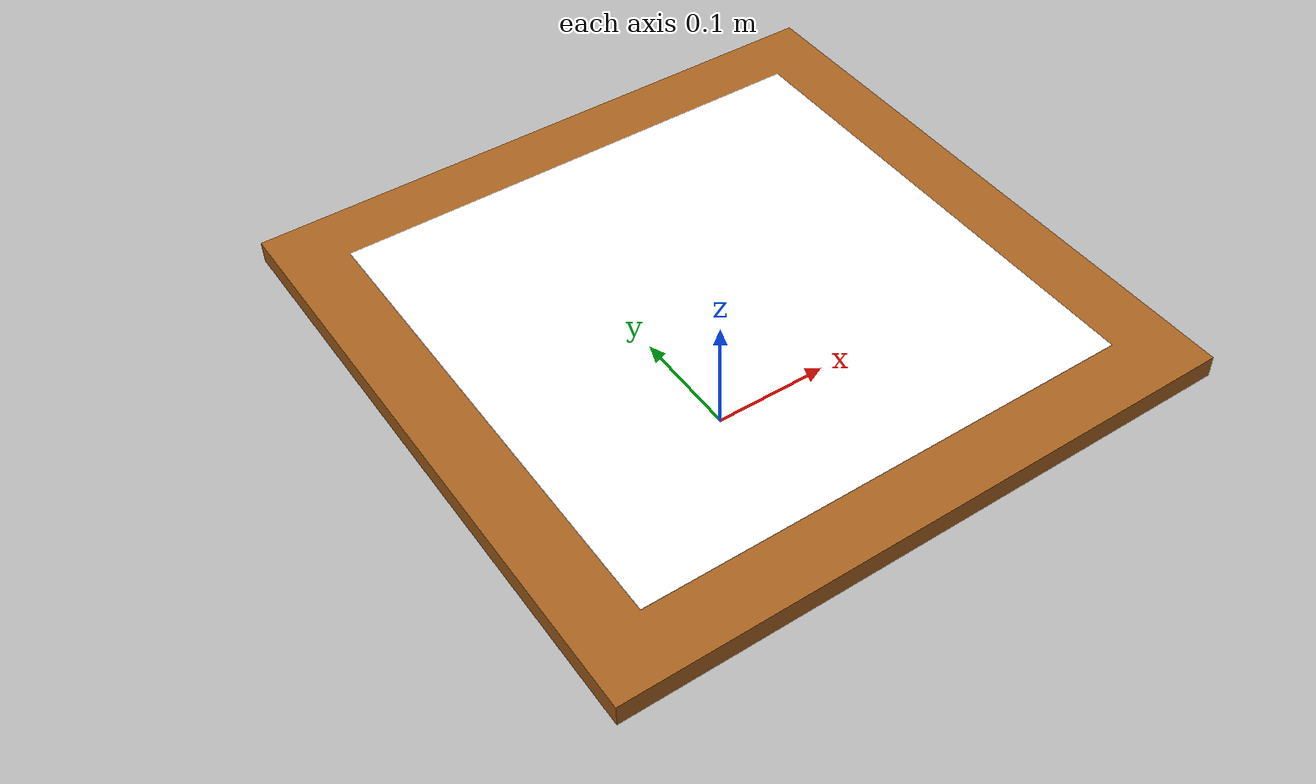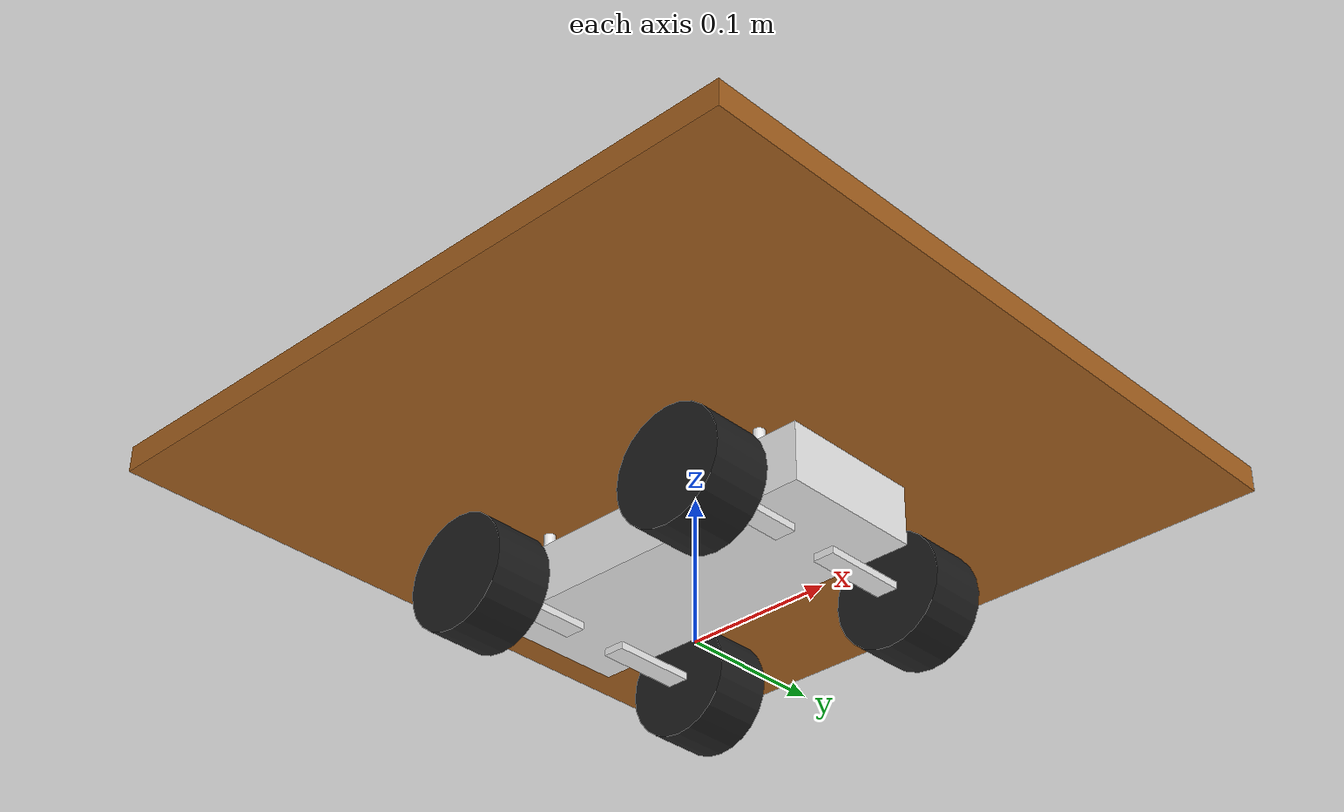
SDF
<sdf version='1.11'>
  <model name='r1_rover_clean'>
    <link name='base_footprint'>
      <inertial>
        <pose>0 0 0.058999999999999997 0 0 0</pose>
        <mass>0.45000000000000001</mass>
        <inertia>
          <ixx>0.00043499999999999979</ixx>
          <ixy>0</ixy>
          <ixz>0</ixz>
          <iyy>0.0024037500000000001</iyy>
          <iyz>0</iyz>
          <izz>0.0027187499999999998</izz>
        </inertia>
      </inertial>
      <!-- 섀시 (흰색) -->
      <visual name='base_footprint_fixed_joint_lump__chassis_link_visual'>
        <pose>0 0 0.058999999999999997 0 0 0</pose>
        <geometry>
          <box>
            <size>0.25 0.10000000000000001 0.040000000000000001</size>
          </box>
        </geometry>
        <material>
          <diffuse>0.92 0.92 0.92 1</diffuse>
          <ambient>0.92 0.92 0.92 1</ambient>
        </material>
      </visual>
      <!-- 상판 (목재 갈색) -->
      <visual name='base_footprint_fixed_joint_lump__upper_board_link_visual_1'>
        <pose>0 0 0.123 0 0 0</pose>
        <geometry>
          <box>
            <size>0.50 0.50 0.018</size>
          </box>
        </geometry>
        <material>
          <diffuse>0.65 0.38 0.12 1</diffuse>
          <ambient>0.65 0.38 0.12 1</ambient>
        </material>
      </visual>
      <!-- 바디 포스트 4개 (흰색) -->
      <visual name='base_footprint_fixed_joint_lump__fl_body_post_visual_2'>
        <pose>0.080000000000000002 0.029999999999999999 0.083999999999999991 0 0 0</pose>
        <geometry>
          <cylinder>
            <length>0.035000000000000003</length>
            <radius>0.0040000000000000001</radius>
          </cylinder>
        </geometry>
        <material>
          <diffuse>0.92 0.92 0.92 1</diffuse>
          <ambient>0.92 0.92 0.92 1</ambient>
        </material>
      </visual>
      <visual name='base_footprint_fixed_joint_lump__fr_body_post_visual_3'>
        <pose>0.080000000000000002 -0.029999999999999999 0.083999999999999991 0 0 0</pose>
        <geometry>
          <cylinder>
            <length>0.035000000000000003</length>
            <radius>0.0040000000000000001</radius>
          </cylinder>
        </geometry>
        <material>
          <diffuse>0.92 0.92 0.92 1</diffuse>
          <ambient>0.92 0.92 0.92 1</ambient>
        </material>
      </visual>
      <visual name='base_footprint_fixed_joint_lump__rl_body_post_visual_4'>
        <pose>-0.10000000000000001 0.029999999999999999 0.083999999999999991 0 0 0</pose>
        <geometry>
          <cylinder>
            <length>0.035000000000000003</length>
            <radius>0.0040000000000000001</radius>
          </cylinder>
        </geometry>
        <material>
          <diffuse>0.92 0.92 0.92 1</diffuse>
          <ambient>0.92 0.92 0.92 1</ambient>
        </material>
      </visual>
      <visual name='base_footprint_fixed_joint_lump__rr_body_post_visual_5'>
        <pose>-0.10000000000000001 -0.029999999999999999 0.083999999999999991 0 0 0</pose>
        <geometry>
          <cylinder>
            <length>0.035000000000000003</length>
            <radius>0.0040000000000000001</radius>
          </cylinder>
        </geometry>
        <material>
          <diffuse>0.92 0.92 0.92 1</diffuse>
          <ambient>0.92 0.92 0.92 1</ambient>
        </material>
      </visual>

      <!-- ArUco 마커 패널 (rove_box 500x500mm 윗면, 400x400mm) -->
      <visual name='aruco_marker_visual'>
        <pose>0 0 0.132 0 0 0</pose>
        <geometry>
          <box>
            <size>0.40 0.40 0.001</size>
          </box>
        </geometry>
        <material>
          <ambient>1 1 1 1</ambient>
          <diffuse>1 1 1 1</diffuse>
          <specular>0 0 0 1</specular>
          <emissive>1 1 1 1</emissive>
          <pbr>
            <metal>
              <albedo_map>model://r1_rover_clean/materials/textures/aruco_marker.png</albedo_map>
              <emissive_map>model://r1_rover_clean/materials/textures/aruco_marker.png</emissive_map>
            </metal>
          </pbr>
        </material>
      </visual>
      <!-- Landing pad collision: upper board top surface (drone can land on this) -->
      <collision name="upper_board_collision">
        <pose>0 0 0.123 0 0 0</pose>
        <geometry>
          <box><size>0.500 0.500 0.018</size></box>
        </geometry>
        <surface>
          <contact>
            <ode>
              <min_depth>0.001</min_depth>
            </ode>
          </contact>
          <friction>
            <ode><mu>0.8</mu><mu2>0.8</mu2></ode>
          </friction>
        </surface>
      </collision>
    </link>

    <!-- gz_bridge는 "base_link" 링크에서 센서를 구독함 (GZBridge.cpp 하드코딩) -->
    <link name="base_link">
      <pose relative_to="base_footprint">0 0 0 0 0 0</pose>
      <inertial>
        <mass>0.001</mass>
        <inertia><ixx>1e-6</ixx><ixy>0</ixy><ixz>0</ixz><iyy>1e-6</iyy><iyz>0</iyz><izz>1e-6</izz></inertia>
      </inertial>
      <sensor name="imu_sensor" type="imu">
        <always_on>1</always_on>
        <update_rate>250</update_rate>
        <imu>
          <angular_velocity>
            <x><noise type="gaussian"><mean>0</mean><stddev>0.0003394</stddev><dynamic_bias_stddev>3.8785e-05</dynamic_bias_stddev><dynamic_bias_correlation_time>1000</dynamic_bias_correlation_time></noise></x>
            <y><noise type="gaussian"><mean>0</mean><stddev>0.0003394</stddev><dynamic_bias_stddev>3.8785e-05</dynamic_bias_stddev><dynamic_bias_correlation_time>1000</dynamic_bias_correlation_time></noise></y>
            <z><noise type="gaussian"><mean>0</mean><stddev>0.0003394</stddev><dynamic_bias_stddev>3.8785e-05</dynamic_bias_stddev><dynamic_bias_correlation_time>1000</dynamic_bias_correlation_time></noise></z>
          </angular_velocity>
          <linear_acceleration>
            <x><noise type="gaussian"><mean>0</mean><stddev>0.004</stddev><dynamic_bias_stddev>0.006</dynamic_bias_stddev><dynamic_bias_correlation_time>300</dynamic_bias_correlation_time></noise></x>
            <y><noise type="gaussian"><mean>0</mean><stddev>0.004</stddev><dynamic_bias_stddev>0.006</dynamic_bias_stddev><dynamic_bias_correlation_time>300</dynamic_bias_correlation_time></noise></y>
            <z><noise type="gaussian"><mean>0</mean><stddev>0.004</stddev><dynamic_bias_stddev>0.006</dynamic_bias_stddev><dynamic_bias_correlation_time>300</dynamic_bias_correlation_time></noise></z>
          </linear_acceleration>
        </imu>
      </sensor>
      <sensor name="air_pressure_sensor" type="air_pressure">
        <always_on>1</always_on>
        <update_rate>50</update_rate>
        <air_pressure>
          <pressure><noise type="gaussian"><mean>0</mean><stddev>0.01</stddev></noise></pressure>
        </air_pressure>
      </sensor>
      <sensor name="magnetometer_sensor" type="magnetometer">
        <always_on>1</always_on>
        <update_rate>100</update_rate>
        <magnetometer>
          <x><noise type="gaussian"><stddev>0.0001</stddev></noise></x>
          <y><noise type="gaussian"><stddev>0.0001</stddev></noise></y>
          <z><noise type="gaussian"><stddev>0.0001</stddev></noise></z>
        </magnetometer>
      </sensor>
      <sensor name="navsat_sensor" type="navsat">
        <always_on>1</always_on>
        <update_rate>30</update_rate>
      </sensor>
    </link>
    <joint name="base_footprint_to_base_link" type="fixed">
      <parent>base_footprint</parent>
      <child>base_link</child>
    </joint>

    <joint name='fl_shock_joint' type='prismatic'>
      <pose relative_to='base_footprint'>0.087499999999999994 0.086999999999999994 0.048999999999999988 0 0 0</pose>
      <parent>base_footprint</parent>
      <child>fl_suspension_arm</child>
      <axis>
        <xyz>0 0 1</xyz>
        <limit>
          <lower>-0.035000000000000003</lower>
          <upper>0.01</upper>
          <effort>200</effort>
          <velocity>2</velocity>
        </limit>
        <dynamics>
          <damping>45</damping>
          <friction>0.5</friction>
          <spring_reference>0</spring_reference>
          <spring_stiffness>0</spring_stiffness>
        </dynamics>
      </axis>
      <physics>
        <ode>
          <implicit_spring_damper>true</implicit_spring_damper>
          <cfm_damping>true</cfm_damping>
          <limit>
            <cfm>0</cfm>
            <erp>0.20000000000000001</erp>
          </limit>
        </ode>
      </physics>
    </joint>
    <link name='fl_suspension_arm'>
      <pose relative_to='fl_shock_joint'>0 0 0 0 0 0</pose>
      <inertial>
        <pose>0 0 0 0 0 0</pose>
        <mass>0.040000000000000001</mass>
        <inertia>
          <ixx>3.2499999999999998e-06</ixx>
          <ixy>0</ixy>
          <ixz>0</ixz>
          <iyy>3.2499999999999998e-06</iyy>
          <iyz>0</iyz>
          <izz>5.0000000000000008e-07</izz>
        </inertia>
      </inertial>
      <visual name='fl_suspension_arm_visual'>
        <pose>0 0 0 0 0 0</pose>
        <geometry>
          <cylinder>
            <length>0.040000000000000001</length>
            <radius>0.0060000000000000001</radius>
          </cylinder>
        </geometry>
        <material>
          <diffuse>0.875 0.875 0.875 1</diffuse>
          <ambient>0.875 0.875 0.875 1</ambient>
        </material>
      </visual>
      <visual name='fl_suspension_arm_visual_1'>
        <pose>0 -0.035000000000000003 -0.014999999999999999 0 0 0</pose>
        <geometry>
          <box>
            <size>0.014999999999999999 0.070000000000000007 0.0050000000000000001</size>
          </box>
        </geometry>
        <material>
          <diffuse>0.92 0.92 0.92 1</diffuse>
          <ambient>0.92 0.92 0.92 1</ambient>
        </material>
      </visual>
    </link>
    <joint name='fl_steering_joint' type='revolute'>
      <pose relative_to='fl_suspension_arm'>0 0 -0.014999999999999999 0 0 0</pose>
      <parent>fl_suspension_arm</parent>
      <child>fl_steering_knuckle</child>
      <axis>
        <xyz>0 0 1</xyz>
        <limit>
          <lower>-0.59999999999999998</lower>
          <upper>0.59999999999999998</upper>
          <effort>50</effort>
          <velocity>5</velocity>
        </limit>
        <dynamics>
          <spring_reference>0</spring_reference>
          <spring_stiffness>0</spring_stiffness>
        </dynamics>
      </axis>
    </joint>
    <link name='fl_steering_knuckle'>
      <pose relative_to='fl_steering_joint'>0 0 0 0 0 0</pose>
      <inertial>
        <pose>0 0 0 0 0 0</pose>
        <mass>0.02</mass>
        <inertia>
          <ixx>1.333333333333333e-06</ixx>
          <ixy>0</ixy>
          <ixz>0</ixz>
          <iyy>1.333333333333333e-06</iyy>
          <iyz>0</iyz>
          <izz>1.333333333333333e-06</izz>
        </inertia>
      </inertial>
      <visual name='fl_steering_knuckle_visual'>
        <pose>0 0 0 0 0 0</pose>
        <geometry>
          <box>
            <size>0.02 0.02 0.02</size>
          </box>
        </geometry>
        <material>
          <diffuse>0.25 0.25 0.25 1</diffuse>
          <ambient>0.25 0.25 0.25 1</ambient>
        </material>
      </visual>
    </link>
    <joint name='fl_wheel_joint' type='revolute'>
      <pose relative_to='fl_steering_knuckle'>0 0.01 0 0 0 0</pose>
      <parent>fl_steering_knuckle</parent>
      <child>fl_wheel</child>
      <axis>
        <xyz>0 1 0</xyz>
        <limit>
          <lower>-inf</lower>
          <upper>inf</upper>
        </limit>
        <dynamics>
          <damping>0.10000000000000001</damping>
          <friction>0.20000000000000001</friction>
          <spring_reference>0</spring_reference>
          <spring_stiffness>0</spring_stiffness>
        </dynamics>
      </axis>
    </joint>
    <link name='fl_wheel'>
      <pose relative_to='fl_wheel_joint'>0 0 0 0 0 0</pose>
      <inertial>
        <pose>0 0 0 0 0 0</pose>
        <mass>0.059999999999999998</mass>
        <inertia>
          <ixx>3.1220000000000003e-05</ixx>
          <ixy>0</ixy>
          <ixz>0</ixz>
          <iyy>3.1220000000000003e-05</iyy>
          <iyz>0</iyz>
          <izz>4.5630000000000002e-05</izz>
        </inertia>
      </inertial>
      <collision name='fl_wheel_collision'>
        <pose>0 0 0 1.570796326795 0 0</pose>
        <geometry>
          <cylinder>
            <length>0.041000000000000002</length>
            <radius>0.039</radius>
          </cylinder>
        </geometry>
        <surface>
          <contact>
            <ode>
              <kp>500000</kp>
              <kd>10</kd>
              <min_depth>0.001</min_depth>
            </ode>
          </contact>
          <friction>
            <ode>
              <mu>1.2</mu>
              <mu2>1.2</mu2>
            </ode>
          </friction>
        </surface>
      </collision>
      <visual name='fl_wheel_visual'>
        <pose>0 0 0 1.570796326795 0 0</pose>
        <geometry>
          <cylinder>
            <length>0.041000000000000002</length>
            <radius>0.039</radius>
          </cylinder>
        </geometry>
        <material>
          <script>
            <name>Gazebo/Black</name>
            <uri>file://media/materials/scripts/gazebo.material</uri>
          </script>
          <diffuse>0.92 0.92 0.92 1</diffuse>
          <ambient>0.92 0.92 0.92 1</ambient>
        </material>
      </visual>
    </link>
    <joint name='fr_shock_joint' type='prismatic'>
      <pose relative_to='base_footprint'>0.087499999999999994 -0.086999999999999994 0.048999999999999988 0 0 0</pose>
      <parent>base_footprint</parent>
      <child>fr_suspension_arm</child>
      <axis>
        <xyz>0 0 1</xyz>
        <limit>
          <lower>-0.035000000000000003</lower>
          <upper>0.01</upper>
          <effort>200</effort>
          <velocity>2</velocity>
        </limit>
        <dynamics>
          <damping>45</damping>
          <friction>0.5</friction>
          <spring_reference>0</spring_reference>
          <spring_stiffness>0</spring_stiffness>
        </dynamics>
      </axis>
      <physics>
        <ode>
          <implicit_spring_damper>true</implicit_spring_damper>
          <cfm_damping>true</cfm_damping>
          <limit>
            <cfm>0</cfm>
            <erp>0.20000000000000001</erp>
          </limit>
        </ode>
      </physics>
    </joint>
    <link name='fr_suspension_arm'>
      <pose relative_to='fr_shock_joint'>0 0 0 0 0 0</pose>
      <inertial>
        <pose>0 0 0 0 0 0</pose>
        <mass>0.040000000000000001</mass>
        <inertia>
          <ixx>3.2499999999999998e-06</ixx>
          <ixy>0</ixy>
          <ixz>0</ixz>
          <iyy>3.2499999999999998e-06</iyy>
          <iyz>0</iyz>
          <izz>5.0000000000000008e-07</izz>
        </inertia>
      </inertial>
      <visual name='fr_suspension_arm_visual'>
        <pose>0 0 0 0 0 0</pose>
        <geometry>
          <cylinder>
            <length>0.040000000000000001</length>
            <radius>0.0060000000000000001</radius>
          </cylinder>
        </geometry>
        <material>
          <diffuse>0.875 0.875 0.875 1</diffuse>
          <ambient>0.875 0.875 0.875 1</ambient>
        </material>
      </visual>
      <visual name='fr_suspension_arm_visual_1'>
        <pose>0 0.035000000000000003 -0.014999999999999999 0 0 0</pose>
        <geometry>
          <box>
            <size>0.014999999999999999 0.070000000000000007 0.0050000000000000001</size>
          </box>
        </geometry>
        <material>
          <diffuse>0.92 0.92 0.92 1</diffuse>
          <ambient>0.92 0.92 0.92 1</ambient>
        </material>
      </visual>
    </link>
    <joint name='fr_steering_joint' type='revolute'>
      <pose relative_to='fr_suspension_arm'>0 0 -0.014999999999999999 0 0 0</pose>
      <parent>fr_suspension_arm</parent>
      <child>fr_steering_knuckle</child>
      <axis>
        <xyz>0 0 1</xyz>
        <limit>
          <lower>-0.59999999999999998</lower>
          <upper>0.59999999999999998</upper>
          <effort>50</effort>
          <velocity>5</velocity>
        </limit>
        <dynamics>
          <spring_reference>0</spring_reference>
          <spring_stiffness>0</spring_stiffness>
        </dynamics>
      </axis>
    </joint>
    <link name='fr_steering_knuckle'>
      <pose relative_to='fr_steering_joint'>0 0 0 0 0 0</pose>
      <inertial>
        <pose>0 0 0 0 0 0</pose>
        <mass>0.02</mass>
        <inertia>
          <ixx>1.333333333333333e-06</ixx>
          <ixy>0</ixy>
          <ixz>0</ixz>
          <iyy>1.333333333333333e-06</iyy>
          <iyz>0</iyz>
          <izz>1.333333333333333e-06</izz>
        </inertia>
      </inertial>
      <visual name='fr_steering_knuckle_visual'>
        <pose>0 0 0 0 0 0</pose>
        <geometry>
          <box>
            <size>0.02 0.02 0.02</size>
          </box>
        </geometry>
        <material>
          <diffuse>0.25 0.25 0.25 1</diffuse>
          <ambient>0.25 0.25 0.25 1</ambient>
        </material>
      </visual>
    </link>
    <joint name='fr_wheel_joint' type='revolute'>
      <pose relative_to='fr_steering_knuckle'>0 -0.01 0 0 0 0</pose>
      <parent>fr_steering_knuckle</parent>
      <child>fr_wheel</child>
      <axis>
        <xyz>0 1 0</xyz>
        <limit>
          <lower>-inf</lower>
          <upper>inf</upper>
        </limit>
        <dynamics>
          <damping>0.10000000000000001</damping>
          <friction>0.20000000000000001</friction>
          <spring_reference>0</spring_reference>
          <spring_stiffness>0</spring_stiffness>
        </dynamics>
      </axis>
    </joint>
    <link name='fr_wheel'>
      <pose relative_to='fr_wheel_joint'>0 0 0 0 0 0</pose>
      <inertial>
        <pose>0 0 0 0 0 0</pose>
        <mass>0.059999999999999998</mass>
        <inertia>
          <ixx>3.1220000000000003e-05</ixx>
          <ixy>0</ixy>
          <ixz>0</ixz>
          <iyy>3.1220000000000003e-05</iyy>
          <iyz>0</iyz>
          <izz>4.5630000000000002e-05</izz>
        </inertia>
      </inertial>
      <collision name='fr_wheel_collision'>
        <pose>0 0 0 1.570796326795 0 0</pose>
        <geometry>
          <cylinder>
            <length>0.041000000000000002</length>
            <radius>0.039</radius>
          </cylinder>
        </geometry>
        <surface>
          <contact>
            <ode>
              <kp>500000</kp>
              <kd>10</kd>
              <min_depth>0.001</min_depth>
            </ode>
          </contact>
          <friction>
            <ode>
              <mu>1.2</mu>
              <mu2>1.2</mu2>
            </ode>
          </friction>
        </surface>
      </collision>
      <visual name='fr_wheel_visual'>
        <pose>0 0 0 1.570796326795 0 0</pose>
        <geometry>
          <cylinder>
            <length>0.041000000000000002</length>
            <radius>0.039</radius>
          </cylinder>
        </geometry>
        <material>
          <script>
            <name>Gazebo/Black</name>
            <uri>file://media/materials/scripts/gazebo.material</uri>
          </script>
          <diffuse>0.92 0.92 0.92 1</diffuse>
          <ambient>0.92 0.92 0.92 1</ambient>
        </material>
      </visual>
    </link>
    <joint name='rl_shock_joint' type='prismatic'>
      <pose relative_to='base_footprint'>-0.087499999999999994 0.086999999999999994 0.048999999999999988 0 0 0</pose>
      <parent>base_footprint</parent>
      <child>rl_suspension_arm</child>
      <axis>
        <xyz>0 0 1</xyz>
        <limit>
          <lower>-0.035000000000000003</lower>
          <upper>0.01</upper>
          <effort>200</effort>
          <velocity>2</velocity>
        </limit>
        <dynamics>
          <damping>45</damping>
          <friction>0.5</friction>
          <spring_reference>0</spring_reference>
          <spring_stiffness>0</spring_stiffness>
        </dynamics>
      </axis>
      <physics>
        <ode>
          <implicit_spring_damper>true</implicit_spring_damper>
          <cfm_damping>true</cfm_damping>
          <limit>
            <cfm>0</cfm>
            <erp>0.20000000000000001</erp>
          </limit>
        </ode>
      </physics>
    </joint>
    <link name='rl_suspension_arm'>
      <pose relative_to='rl_shock_joint'>0 0 0 0 0 0</pose>
      <inertial>
        <pose>0 0 -0.0050000000000000001 0 0 0</pose>
        <mass>0.059999999999999998</mass>
        <inertia>
          <ixx>7.5833333333333333e-06</ixx>
          <ixy>0</ixy>
          <ixz>0</ixz>
          <iyy>7.5833333333333333e-06</iyy>
          <iyz>0</iyz>
          <izz>1.8333333333333331e-06</izz>
        </inertia>
      </inertial>
      <visual name='rl_suspension_arm_visual'>
        <pose>0 0 0 0 0 0</pose>
        <geometry>
          <cylinder>
            <length>0.040000000000000001</length>
            <radius>0.0060000000000000001</radius>
          </cylinder>
        </geometry>
        <material>
          <diffuse>0.875 0.875 0.875 1</diffuse>
          <ambient>0.875 0.875 0.875 1</ambient>
        </material>
      </visual>
      <visual name='rl_suspension_arm_visual_1'>
        <pose>0 -0.035000000000000003 -0.014999999999999999 0 0 0</pose>
        <geometry>
          <box>
            <size>0.014999999999999999 0.070000000000000007 0.0050000000000000001</size>
          </box>
        </geometry>
        <material>
          <diffuse>0.92 0.92 0.92 1</diffuse>
          <ambient>0.92 0.92 0.92 1</ambient>
        </material>
      </visual>
      <visual name='rl_suspension_arm_fixed_joint_lump__rl_steering_knuckle_visual_2'>
        <pose>0 0 -0.014999999999999999 0 0 0</pose>
        <geometry>
          <box>
            <size>0.02 0.02 0.02</size>
          </box>
        </geometry>
        <material>
          <diffuse>0.25 0.25 0.25 1</diffuse>
          <ambient>0.25 0.25 0.25 1</ambient>
        </material>
      </visual>
    </link>
    <joint name='rl_wheel_joint' type='revolute'>
      <pose relative_to='rl_suspension_arm'>0 0.01 -0.014999999999999999 0 0 0</pose>
      <parent>rl_suspension_arm</parent>
      <child>rl_wheel</child>
      <axis>
        <xyz>0 1 0</xyz>
        <limit>
          <lower>-inf</lower>
          <upper>inf</upper>
        </limit>
        <dynamics>
          <damping>0.10000000000000001</damping>
          <friction>0.20000000000000001</friction>
          <spring_reference>0</spring_reference>
          <spring_stiffness>0</spring_stiffness>
        </dynamics>
      </axis>
    </joint>
    <link name='rl_wheel'>
      <pose relative_to='rl_wheel_joint'>0 0 0 0 0 0</pose>
      <inertial>
        <pose>0 0 0 0 0 0</pose>
        <mass>0.059999999999999998</mass>
        <inertia>
          <ixx>3.1220000000000003e-05</ixx>
          <ixy>0</ixy>
          <ixz>0</ixz>
          <iyy>3.1220000000000003e-05</iyy>
          <iyz>0</iyz>
          <izz>4.5630000000000002e-05</izz>
        </inertia>
      </inertial>
      <collision name='rl_wheel_collision'>
        <pose>0 0 0 1.570796326795 0 0</pose>
        <geometry>
          <cylinder>
            <length>0.041000000000000002</length>
            <radius>0.039</radius>
          </cylinder>
        </geometry>
        <surface>
          <contact>
            <ode>
              <kp>500000</kp>
              <kd>10</kd>
              <min_depth>0.001</min_depth>
            </ode>
          </contact>
          <friction>
            <ode>
              <mu>1.2</mu>
              <mu2>1.2</mu2>
            </ode>
          </friction>
        </surface>
      </collision>
      <visual name='rl_wheel_visual'>
        <pose>0 0 0 1.570796326795 0 0</pose>
        <geometry>
          <cylinder>
            <length>0.041000000000000002</length>
            <radius>0.039</radius>
          </cylinder>
        </geometry>
        <material>
          <script>
            <name>Gazebo/Black</name>
            <uri>file://media/materials/scripts/gazebo.material</uri>
          </script>
          <diffuse>0.92 0.92 0.92 1</diffuse>
          <ambient>0.92 0.92 0.92 1</ambient>
        </material>
      </visual>
    </link>
    <joint name='rr_shock_joint' type='prismatic'>
      <pose relative_to='base_footprint'>-0.087499999999999994 -0.086999999999999994 0.048999999999999988 0 0 0</pose>
      <parent>base_footprint</parent>
      <child>rr_suspension_arm</child>
      <axis>
        <xyz>0 0 1</xyz>
        <limit>
          <lower>-0.035000000000000003</lower>
          <upper>0.01</upper>
          <effort>200</effort>
          <velocity>2</velocity>
        </limit>
        <dynamics>
          <damping>45</damping>
          <friction>0.5</friction>
          <spring_reference>0</spring_reference>
          <spring_stiffness>0</spring_stiffness>
        </dynamics>
      </axis>
      <physics>
        <ode>
          <implicit_spring_damper>true</implicit_spring_damper>
          <cfm_damping>true</cfm_damping>
          <limit>
            <cfm>0</cfm>
            <erp>0.20000000000000001</erp>
          </limit>
        </ode>
      </physics>
    </joint>
    <link name='rr_suspension_arm'>
      <pose relative_to='rr_shock_joint'>0 0 0 0 0 0</pose>
      <inertial>
        <pose>0 0 -0.0050000000000000001 0 0 0</pose>
        <mass>0.059999999999999998</mass>
        <inertia>
          <ixx>7.5833333333333333e-06</ixx>
          <ixy>0</ixy>
          <ixz>0</ixz>
          <iyy>7.5833333333333333e-06</iyy>
          <iyz>0</iyz>
          <izz>1.8333333333333331e-06</izz>
        </inertia>
      </inertial>
      <visual name='rr_suspension_arm_visual'>
        <pose>0 0 0 0 0 0</pose>
        <geometry>
          <cylinder>
            <length>0.040000000000000001</length>
            <radius>0.0060000000000000001</radius>
          </cylinder>
        </geometry>
        <material>
          <diffuse>0.875 0.875 0.875 1</diffuse>
          <ambient>0.875 0.875 0.875 1</ambient>
        </material>
      </visual>
      <visual name='rr_suspension_arm_visual_1'>
        <pose>0 0.035000000000000003 -0.014999999999999999 0 0 0</pose>
        <geometry>
          <box>
            <size>0.014999999999999999 0.070000000000000007 0.0050000000000000001</size>
          </box>
        </geometry>
        <material>
          <diffuse>0.92 0.92 0.92 1</diffuse>
          <ambient>0.92 0.92 0.92 1</ambient>
        </material>
      </visual>
      <visual name='rr_suspension_arm_fixed_joint_lump__rr_steering_knuckle_visual_2'>
        <pose>0 0 -0.014999999999999999 0 0 0</pose>
        <geometry>
          <box>
            <size>0.02 0.02 0.02</size>
          </box>
        </geometry>
        <material>
          <diffuse>0.25 0.25 0.25 1</diffuse>
          <ambient>0.25 0.25 0.25 1</ambient>
        </material>
      </visual>
    </link>
    <joint name='rr_wheel_joint' type='revolute'>
      <pose relative_to='rr_suspension_arm'>0 -0.01 -0.014999999999999999 0 0 0</pose>
      <parent>rr_suspension_arm</parent>
      <child>rr_wheel</child>
      <axis>
        <xyz>0 1 0</xyz>
        <limit>
          <lower>-inf</lower>
          <upper>inf</upper>
        </limit>
        <dynamics>
          <damping>0.10000000000000001</damping>
          <friction>0.20000000000000001</friction>
          <spring_reference>0</spring_reference>
          <spring_stiffness>0</spring_stiffness>
        </dynamics>
      </axis>
    </joint>
    <link name='rr_wheel'>
      <pose relative_to='rr_wheel_joint'>0 0 0 0 0 0</pose>
      <inertial>
        <pose>0 0 0 0 0 0</pose>
        <mass>0.059999999999999998</mass>
        <inertia>
          <ixx>3.1220000000000003e-05</ixx>
          <ixy>0</ixy>
          <ixz>0</ixz>
          <iyy>3.1220000000000003e-05</iyy>
          <iyz>0</iyz>
          <izz>4.5630000000000002e-05</izz>
        </inertia>
      </inertial>
      <collision name='rr_wheel_collision'>
        <pose>0 0 0 1.570796326795 0 0</pose>
        <geometry>
          <cylinder>
            <length>0.041000000000000002</length>
            <radius>0.039</radius>
          </cylinder>
        </geometry>
        <surface>
          <contact>
            <ode>
              <kp>500000</kp>
              <kd>10</kd>
              <min_depth>0.001</min_depth>
            </ode>
          </contact>
          <friction>
            <ode>
              <mu>1.2</mu>
              <mu2>1.2</mu2>
            </ode>
          </friction>
        </surface>
      </collision>
      <visual name='rr_wheel_visual'>
        <pose>0 0 0 1.570796326795 0 0</pose>
        <geometry>
          <cylinder>
            <length>0.041000000000000002</length>
            <radius>0.039</radius>
          </cylinder>
        </geometry>
        <material>
          <script>
            <name>Gazebo/Black</name>
            <uri>file://media/materials/scripts/gazebo.material</uri>
          </script>
          <diffuse>0.92 0.92 0.92 1</diffuse>
          <ambient>0.92 0.92 0.92 1</ambient>
        </material>
      </visual>
    </link>
    <frame name='chassis_to_upper_board_joint' attached_to='chassis_link'>
      <pose>0 0 0.042000000000000003 0 0 1.5708</pose>
    </frame>
    <frame name='upper_board_link' attached_to='chassis_to_upper_board_joint'>
      <pose>0 0 0 0 0 0</pose>
    </frame>
    <frame name='fl_body_post_joint' attached_to='chassis_link'>
      <pose>0.080000000000000002 0.029999999999999999 0.025000000000000001 0 0 0</pose>
    </frame>
    <frame name='fl_body_post' attached_to='fl_body_post_joint'>
      <pose>0 0 0 0 0 0</pose>
    </frame>
    <frame name='fr_body_post_joint' attached_to='chassis_link'>
      <pose>0.080000000000000002 -0.029999999999999999 0.025000000000000001 0 0 0</pose>
    </frame>
    <frame name='fr_body_post' attached_to='fr_body_post_joint'>
      <pose>0 0 0 0 0 0</pose>
    </frame>
    <frame name='rl_body_post_joint' attached_to='chassis_link'>
      <pose>-0.10000000000000001 0.029999999999999999 0.025000000000000001 0 0 0</pose>
    </frame>
    <frame name='rl_body_post' attached_to='rl_body_post_joint'>
      <pose>0 0 0 0 0 0</pose>
    </frame>
    <frame name='rr_body_post_joint' attached_to='chassis_link'>
      <pose>-0.10000000000000001 -0.029999999999999999 0.025000000000000001 0 0 0</pose>
    </frame>
    <frame name='rr_body_post' attached_to='rr_body_post_joint'>
      <pose>0 0 0 0 0 0</pose>
    </frame>
    <frame name='base_joint' attached_to='base_footprint'>
      <pose>0 0 0.058999999999999997 0 0 0</pose>
    </frame>
    <frame name='chassis_link' attached_to='base_joint'>
      <pose>0 0 0 0 0 0</pose>
    </frame>
    <frame name='rl_steering_joint' attached_to='rl_suspension_arm'>
      <pose>0 0 -0.014999999999999999 0 0 0</pose>
    </frame>
    <frame name='rl_steering_knuckle' attached_to='rl_steering_joint'>
      <pose>0 0 0 0 0 0</pose>
    </frame>
    <frame name='rr_steering_joint' attached_to='rr_suspension_arm'>
      <pose>0 0 -0.014999999999999999 0 0 0</pose>
    </frame>
    <frame name='rr_steering_knuckle' attached_to='rr_steering_joint'>
      <pose>0 0 0 0 0 0</pose>
    </frame>

    <!-- 우측 바퀴: actuator_number=0 (SIM_GZ_WH_FUNC1=101, right) -->
    <plugin filename="gz-sim-joint-controller-system" name="gz::sim::systems::JointController">
      <joint_name>fr_wheel_joint</joint_name>
      <sub_topic>command/motor_speed</sub_topic>
      <use_actuator_msg>true</use_actuator_msg>
      <actuator_number>0</actuator_number>
    </plugin>
    <plugin filename="gz-sim-joint-controller-system" name="gz::sim::systems::JointController">
      <joint_name>rr_wheel_joint</joint_name>
      <sub_topic>command/motor_speed</sub_topic>
      <use_actuator_msg>true</use_actuator_msg>
      <actuator_number>0</actuator_number>
    </plugin>

    <!-- 좌측 바퀴: actuator_number=1 (SIM_GZ_WH_FUNC2=102, left) -->
    <plugin filename="gz-sim-joint-controller-system" name="gz::sim::systems::JointController">
      <joint_name>fl_wheel_joint</joint_name>
      <sub_topic>command/motor_speed</sub_topic>
      <use_actuator_msg>true</use_actuator_msg>
      <actuator_number>1</actuator_number>
    </plugin>
    <plugin filename="gz-sim-joint-controller-system" name="gz::sim::systems::JointController">
      <joint_name>rl_wheel_joint</joint_name>
      <sub_topic>command/motor_speed</sub_topic>
      <use_actuator_msg>true</use_actuator_msg>
      <actuator_number>1</actuator_number>
    </plugin>

    <!-- 조향 (스티어링) -->
    <plugin filename="gz-sim-joint-position-controller-system" name="gz::sim::systems::JointPositionController">
      <joint_name>fl_steering_joint</joint_name>
      <sub_topic>servo_0</sub_topic>
      <p_gain>1</p_gain>
      <i_gain>0.1</i_gain>
      <d_gain>0.01</d_gain>
    </plugin>
    <plugin filename="gz-sim-joint-position-controller-system" name="gz::sim::systems::JointPositionController">
      <joint_name>fr_steering_joint</joint_name>
      <sub_topic>servo_0</sub_topic>
      <p_gain>1</p_gain>
      <i_gain>0.1</i_gain>
      <d_gain>0.01</d_gain>
    </plugin>

    <!-- 조인트 상태 발행 -->
    <plugin filename="gz-sim-joint-state-publisher-system" name="gz::sim::systems::JointStatePublisher">
      <joint_name>fl_wheel_joint</joint_name>
      <joint_name>fr_wheel_joint</joint_name>
      <joint_name>rl_wheel_joint</joint_name>
      <joint_name>rr_wheel_joint</joint_name>
      <joint_name>fl_steering_joint</joint_name>
      <joint_name>fr_steering_joint</joint_name>
      <joint_name>fl_shock_joint</joint_name>
      <joint_name>fr_shock_joint</joint_name>
      <joint_name>rl_shock_joint</joint_name>
      <joint_name>rr_shock_joint</joint_name>
    </plugin>

    <!-- 오도메트리 발행 → gz_bridge가 EKF에 위치 데이터 제공 -->
    <plugin filename="gz-sim-odometry-publisher-system" name="gz::sim::systems::OdometryPublisher">
      <odom_frame>odom</odom_frame>
      <robot_base_frame>base_footprint</robot_base_frame>
      <odom_publish_frequency>50</odom_publish_frequency>
      <gaussian_noise>0.01</gaussian_noise>
    </plugin>

  </model>
</sdf>
